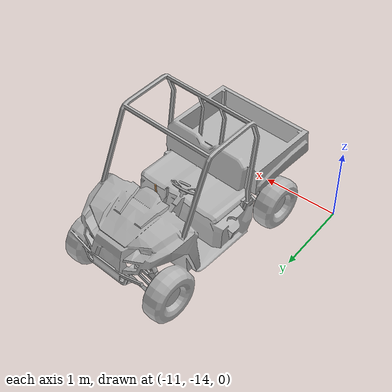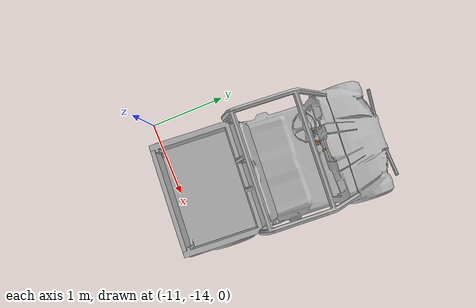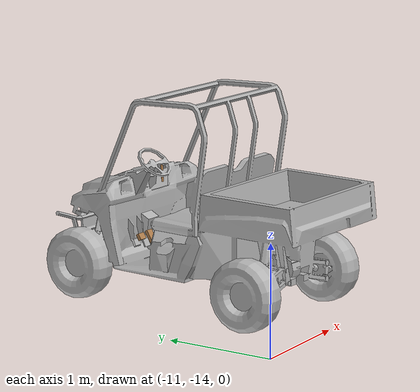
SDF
<sdf version="1.6">
 <world name="default">
  <model name="polaris_ranger_ev_clone_1_clone_clone_clone_clone_1">
   <static>true</static>
   <link name="chassis">
    <inertial>
     <mass>720</mass>
     <inertia><ixx>140</ixx><ixy>0</ixy><iyy>550</iyy><ixz>0</ixz><iyz>0</iyz><izz>550</izz></inertia>
    </inertial>
    <visual name="visual">
     <pose>0 0 0 0 0 -1.5708</pose>
     <geometry><mesh><uri>model://polaris_ranger_ev/meshes/polaris.dae</uri><scale>1 1 1</scale></mesh></geometry>
     <material>
      <script>
       <uri>model://polaris_ranger_ev/materials/scripts</uri>
       <uri>model://polaris_ranger_ev/materials/textures</uri>
       <name>Polaris/Diffuse</name>
      </script>
     </material>
    </visual>
    <collision name="chassis_bottom">
     <pose>0 0 0.35 0 -0 0</pose>
     <geometry><box><size>2 1 0.1</size></box></geometry>
    </collision>
    <collision name="cargo_bottom">
     <pose>-0.9 0 0.9 0 -0 0</pose>
     <geometry><box><size>0.9 1.2 0.01</size></box></geometry>
    </collision>
    <collision name="cargo_front">
     <pose>-0.45 0 1.025 0 -0 0</pose>
     <geometry><box><size>0.05 1.2 0.25</size></box></geometry>
    </collision>
    <collision name="cargo_back">
     <pose>-1.35 0 1.025 0 -0 0</pose>
     <geometry><box><size>0.05 1.2 0.25</size></box></geometry>
    </collision>
    <collision name="cargo_left">
     <pose>-0.9 0.6 1.025 0 -0 0</pose>
     <geometry><box><size>0.9 0.05 0.25</size></box></geometry>
    </collision>
    <collision name="cargo_right">
     <pose>-0.9 -0.6 1.025 0 -0 0</pose>
     <geometry><box><size>0.9 0.05 0.25</size></box></geometry>
    </collision>
    <collision name="seat">
     <pose>-0.1 0 0.625 0 -0 0</pose>
     <geometry><box><size>0.6 1 0.65</size></box></geometry>
    </collision>
    <collision name="seat_back">
     <pose>-0.3 0 1.125 0 -0.2 0</pose>
     <geometry><box><size>0.1 1 0.4</size></box></geometry>
    </collision>
    <collision name="engine">
     <pose>0.95 0 0.7 0 -0 0</pose>
     <geometry><box><size>0.58 1 0.8</size></box></geometry>
    </collision>
    <collision name="steering_column">
     <pose>0.525 0.3 1.025 0 -0.8 0</pose>
     <geometry><cylinder><radius>0.05</radius><length>0.45</length></cylinder></geometry>
    </collision>
   </link>
   <link name="rear_right_wheel">
    <pose>-0.85 -0.6 0.32 1.5708 -0 0</pose>
    <inertial>
     <mass>12</mass>
     <inertia><ixx>0.5</ixx><ixy>0</ixy><iyy>0.5</iyy><ixz>0</ixz><iyz>0</iyz><izz>1</izz></inertia>
    </inertial>
    <collision name="collision">
     <geometry><cylinder><radius>0.32</radius><length>0.23</length></cylinder></geometry>
     <surface>
      <friction><ode><mu>100000</mu><mu2>100000</mu2><slip1>0</slip1><slip2>0</slip2></ode></friction>
     </surface>
    </collision>
   </link>
   <joint name="rear_right_wheel_joint" type="revolute">
    <pose>0 0 -0.1 0 -0 0</pose>
    <child>rear_right_wheel</child>
    <parent>chassis</parent>
    <axis>
     <xyz>0 1 0</xyz>
     <use_parent_model_frame>1</use_parent_model_frame>
     <limit><lower>-1e+16</lower><upper>1e+16</upper></limit>
     <dynamics><spring_reference>0</spring_reference><spring_stiffness>0</spring_stiffness></dynamics>
    </axis>
    <physics><ode><limit><cfm>0</cfm><erp>0.9</erp></limit></ode></physics>
   </joint>
   <link name="rear_left_wheel">
    <pose>-0.85 0.6 0.32 1.5708 -0 0</pose>
    <inertial>
     <mass>12</mass>
     <inertia><ixx>0.5</ixx><ixy>0</ixy><iyy>0.5</iyy><ixz>0</ixz><iyz>0</iyz><izz>1</izz></inertia>
    </inertial>
    <collision name="collision">
     <geometry><cylinder><radius>0.32</radius><length>0.23</length></cylinder></geometry>
     <surface>
      <friction><ode><mu>100000</mu><mu2>100000</mu2><slip1>0</slip1><slip2>0</slip2></ode></friction>
     </surface>
    </collision>
   </link>
   <joint name="rear_left_wheel_joint" type="revolute">
    <child>rear_left_wheel</child>
    <parent>chassis</parent>
    <axis>
     <xyz>0 1 0</xyz>
     <use_parent_model_frame>1</use_parent_model_frame>
     <limit><lower>-1e+16</lower><upper>1e+16</upper></limit>
     <dynamics><spring_reference>0</spring_reference><spring_stiffness>0</spring_stiffness></dynamics>
    </axis>
    <physics><ode><limit><cfm>0</cfm><erp>0.9</erp></limit></ode></physics>
   </joint>
   <link name="front_right_wheel">
    <pose>1.03 -0.6 0.32 1.5708 -0 0</pose>
    <inertial>
     <mass>12</mass>
     <inertia><ixx>0.5</ixx><ixy>0</ixy><iyy>0.5</iyy><ixz>0</ixz><iyz>0</iyz><izz>1</izz></inertia>
    </inertial>
    <collision name="collision">
     <geometry><cylinder><radius>0.32</radius><length>0.23</length></cylinder></geometry>
     <surface>
      <friction><ode><mu>100000</mu><mu2>100000</mu2><slip1>0</slip1><slip2>0</slip2></ode></friction>
     </surface>
    </collision>
   </link>
   <link name="front_right_wheel_steering_block">
    <pose>1.03 -0.5 0.32 1.5708 -0 0</pose>
    <inertial>
     <mass>1</mass>
     <inertia><ixx>1</ixx><ixy>0</ixy><iyy>1</iyy><ixz>0</ixz><iyz>0</iyz><izz>1</izz></inertia>
    </inertial>
    <collision name="collision">
     <geometry><cylinder><radius>0.05</radius><length>0.01</length></cylinder></geometry>
    </collision>
   </link>
   <joint name="front_right_steering_joint" type="revolute">
    <child>front_right_wheel_steering_block</child>
    <parent>chassis</parent>
    <axis>
     <xyz>0 0 1</xyz>
     <limit><lower>-1</lower><upper>1</upper></limit>
     <use_parent_model_frame>1</use_parent_model_frame>
     <dynamics><spring_reference>0</spring_reference><spring_stiffness>0</spring_stiffness></dynamics>
    </axis>
    <physics><ode><limit><cfm>0</cfm><erp>0.9</erp></limit></ode></physics>
   </joint>
   <joint name="front_right_wheel_joint" type="revolute">
    <child>front_right_wheel</child>
    <parent>front_right_wheel_steering_block</parent>
    <axis>
     <xyz>0 1 0</xyz>
     <use_parent_model_frame>1</use_parent_model_frame>
     <limit><lower>-1e+16</lower><upper>1e+16</upper></limit>
     <dynamics><spring_reference>0</spring_reference><spring_stiffness>0</spring_stiffness></dynamics>
    </axis>
    <physics><ode><limit><cfm>0</cfm><erp>0.9</erp></limit></ode></physics>
   </joint>
   <link name="front_left_wheel">
    <pose>1.03 0.6 0.32 1.5708 -0 0</pose>
    <inertial>
     <mass>12</mass>
     <inertia><ixx>0.5</ixx><ixy>0</ixy><iyy>0.5</iyy><ixz>0</ixz><iyz>0</iyz><izz>1</izz></inertia>
    </inertial>
    <collision name="collision">
     <geometry><cylinder><radius>0.32</radius><length>0.23</length></cylinder></geometry>
     <surface>
      <friction><ode><mu>100000</mu><mu2>100000</mu2><slip1>0</slip1><slip2>0</slip2></ode></friction>
     </surface>
    </collision>
   </link>
   <link name="front_left_wheel_steering_block">
    <pose>1.03 0.5 0.32 1.5708 -0 0</pose>
    <inertial>
     <mass>1</mass>
     <inertia><ixx>1</ixx><ixy>0</ixy><iyy>1</iyy><ixz>0</ixz><iyz>0</iyz><izz>1</izz></inertia>
    </inertial>
    <collision name="collision">
     <geometry><cylinder><radius>0.05</radius><length>0.01</length></cylinder></geometry>
    </collision>
   </link>
   <joint name="front_left_steering_joint" type="revolute">
    <child>front_left_wheel_steering_block</child>
    <parent>chassis</parent>
    <axis>
     <xyz>0 0 1</xyz>
     <limit><lower>-1</lower><upper>1</upper></limit>
     <use_parent_model_frame>1</use_parent_model_frame>
     <dynamics><spring_reference>0</spring_reference><spring_stiffness>0</spring_stiffness></dynamics>
    </axis>
    <physics><ode><limit><cfm>0</cfm><erp>0.9</erp></limit></ode></physics>
   </joint>
   <joint name="front_left_wheel_joint" type="revolute">
    <child>front_left_wheel</child>
    <parent>front_left_wheel_steering_block</parent>
    <axis>
     <xyz>0 1 0</xyz>
     <use_parent_model_frame>1</use_parent_model_frame>
     <limit><lower>-1e+16</lower><upper>1e+16</upper></limit>
     <dynamics><spring_reference>0</spring_reference><spring_stiffness>0</spring_stiffness></dynamics>
    </axis>
    <physics><ode><limit><cfm>0</cfm><erp>0.9</erp></limit></ode></physics>
   </joint>
   <link name="gas_pedal">
    <pose>0.53 0.14 0.56 0 -1 0</pose>
    <gravity>0</gravity>
    <inertial>
     <mass>0.1</mass>
     <inertia><ixx>0.01</ixx><ixy>0</ixy><ixz>0</ixz><iyy>0.01</iyy><iyz>0</iyz><izz>0.01</izz></inertia>
    </inertial>
    <collision name="gas_pedal_collision"><geometry><box><size>0.12 0.07 0.03</size></box></geometry></collision>
    <visual name="gas_pedal_visual">
     <geometry><box><size>0.12 0.07 0.03</size></box></geometry>
     <material>
      <script><uri>file://media/materials/scripts/gazebo.material</uri><name>Gazebo/Wood</name></script>
      <ambient>0.2 0.2 0.2 1</ambient>
      <diffuse>0.2 0.2 0.2 1</diffuse>
      <specular>0.2 0.2 0.2 1</specular>
      <emissive>0.5 0.5 0.5 1</emissive>
     </material>
    </visual>
   </link>
   <link name="brake_pedal">
    <gravity>0</gravity>
    <pose>0.54 0.27 0.58 0 -1 0</pose>
    <inertial>
     <mass>0.1</mass>
     <inertia><ixx>0.01</ixx><ixy>0</ixy><ixz>0</ixz><iyy>0.01</iyy><iyz>0</iyz><izz>0.01</izz></inertia>
    </inertial>
    <collision name="brake_pedal_collision">
     <geometry><box><size>0.06 0.08 0.03</size></box></geometry>
    </collision>
    <visual name="brake_pedal_visual">
     <geometry><box><size>0.06 0.08 0.03</size></box></geometry>
     <material>
      <script><uri>file://media/materials/scripts/gazebo.material</uri><name>Gazebo/Wood</name></script>
      <ambient>0.2 0.2 0.2 1</ambient>
      <diffuse>0.2 0.2 0.2 1</diffuse>
      <specular>0.2 0.2 0.2 1</specular>
      <emissive>0.5 0.5 0.5 1</emissive>
     </material>
    </visual>
   </link>
   <link name="steering_wheel">
    <pose>0.37 0.3 1.2 0 -0.8 0</pose>
    <inertial>
     <mass>1</mass>
     <inertia><ixx>0.1</ixx><ixy>0</ixy><ixz>0</ixz><iyy>0.1</iyy><iyz>0</iyz><izz>1</izz></inertia>
    </inertial>
    <collision name="steering_wheel_post_left">
     <pose>0 0.08 0 1.5708 -0 0</pose>
     <geometry><cylinder><radius>0.02</radius><length>0.15</length></cylinder></geometry>
    </collision>
    <collision name="steering_wheel_post_right">
     <pose>0 -0.08 0 1.5708 -0 0</pose>
     <geometry><cylinder><radius>0.02</radius><length>0.15</length></cylinder></geometry>
    </collision>
    <collision name="steering_wheel_post_middle">
     <pose>-0.08 0 0 3.14159 1.57079 3.14159</pose>
     <geometry><cylinder><radius>0.02</radius><length>0.15</length></cylinder></geometry>
    </collision>
    <collision name="collision00">
     <pose>0.15 0 0 3.14159 1.57079 -1.57079</pose>
     <geometry><cylinder><length>0.105066</length><radius>0.01</radius></cylinder></geometry>
    </collision>
    <collision name="collision01">
     <pose>0.121353 0.088168 0 3.14159 1.57079 -0.942483</pose>
     <geometry><cylinder><length>0.105066</length><radius>0.01</radius></cylinder></geometry>
    </collision>
    <collision name="collision02">
     <pose>0.046353 0.142658 0 3.14159 1.57079 -0.314163</pose>
     <geometry><cylinder><length>0.105066</length><radius>0.01</radius></cylinder></geometry>
    </collision>
    <collision name="collision03">
     <pose>-0.046353 0.142658 0 3.14159 1.57079 0.314163</pose>
     <geometry><cylinder><length>0.105066</length><radius>0.01</radius></cylinder></geometry>
    </collision>
    <collision name="collision04">
     <pose>-0.121353 0.088168 0 -3.14159 1.57079 0.942483</pose>
     <geometry><cylinder><length>0.105066</length><radius>0.01</radius></cylinder></geometry>
    </collision>
    <collision name="collision05">
     <pose>-0.15 0 0 -3.14159 1.57079 1.57079</pose>
     <geometry><cylinder><length>0.105066</length><radius>0.01</radius></cylinder></geometry>
    </collision>
    <collision name="collision06">
     <pose>-0.121353 -0.088168 0 3.14159 1.57079 2.19912</pose>
     <geometry><cylinder><length>0.105066</length><radius>0.01</radius></cylinder></geometry>
    </collision>
    <collision name="collision07">
     <pose>-0.046353 -0.142658 0 -3.14159 1.57079 2.82743</pose>
     <geometry><cylinder><length>0.105066</length><radius>0.01</radius></cylinder></geometry>
    </collision>
    <collision name="collision08">
     <pose>0.046353 -0.142658 0 3.14159 1.57079 -2.82743</pose>
     <geometry><cylinder><length>0.105066</length><radius>0.01</radius></cylinder></geometry>
    </collision>
    <collision name="collision09">
     <pose>0.121353 -0.088168 0 -3.14159 1.57079 -2.19911</pose>
     <geometry><cylinder><length>0.105066</length><radius>0.01</radius></cylinder></geometry>
    </collision>
   </link>
   <link name="hand_brake">
    <pose>0.5 0 1.05 3.14159 -0.058407 3.14159</pose>
    <inertial>
     <mass>1</mass>
     <pose>0 0 -0.15 0 -0 0</pose>
     <inertia><ixx>0.1</ixx><ixy>0</ixy><ixz>0</ixz><iyy>0.1</iyy><iyz>0</iyz><izz>1</izz></inertia>
    </inertial>
    <collision name="hand_brake_collision">
     <pose>0 0 -0.1 0 -0 0</pose>
     <geometry><cylinder><radius>0.01</radius><length>0.2</length></cylinder></geometry>
    </collision>
    <visual name="hand_brake_visual">
     <pose>0 0 -0.1 0 -0 0</pose>
     <geometry><cylinder><radius>0.01</radius><length>0.2</length></cylinder></geometry>
     <material>
      <script><uri>file://media/materials/scripts/gazebo.material</uri><name>Gazebo/Wood</name></script>
     </material>
    </visual>
   </link>
   <joint name="gas_joint" type="prismatic">
    <parent>chassis</parent>
    <child>gas_pedal</child>
    <axis>
     <xyz>1 0 -1</xyz>
     <limit><lower>0</lower><upper>0.15</upper></limit>
     <use_parent_model_frame>1</use_parent_model_frame>
     <dynamics><spring_reference>0</spring_reference><spring_stiffness>0</spring_stiffness></dynamics>
    </axis>
   </joint>
   <joint name="brake_joint" type="prismatic">
    <parent>chassis</parent>
    <child>brake_pedal</child>
    <axis>
     <xyz>1 0 -0.6</xyz>
     <limit><lower>0</lower><upper>0.15</upper></limit>
     <use_parent_model_frame>1</use_parent_model_frame>
     <dynamics><spring_reference>0</spring_reference><spring_stiffness>0</spring_stiffness></dynamics>
    </axis>
   </joint>
   <joint name="steering_joint" type="revolute">
    <pose>0 0 0 1.5708 -0.8 0</pose>
    <parent>chassis</parent>
    <child>steering_wheel</child>
    <axis>
     <xyz>-1 0 1.023</xyz>
     <limit><lower>-7.853</lower><upper>7.853</upper></limit>
     <use_parent_model_frame>1</use_parent_model_frame>
     <dynamics><spring_reference>0</spring_reference><spring_stiffness>0</spring_stiffness></dynamics>
    </axis>
   </joint>
   <joint name="hand_brake_joint" type="revolute">
    <parent>chassis</parent>
    <child>hand_brake</child>
    <axis>
     <xyz>0 -1 0</xyz>
     <limit><lower>0</lower><upper>0.6</upper></limit>
     <use_parent_model_frame>1</use_parent_model_frame>
     <dynamics><spring_reference>0</spring_reference><spring_stiffness>0</spring_stiffness></dynamics>
    </axis>
   </joint>
   <pose>-9.80895 -12.6013 -4.4e-05 0 5e-05 1.50251</pose>
  </model>
 </world>
</sdf>
